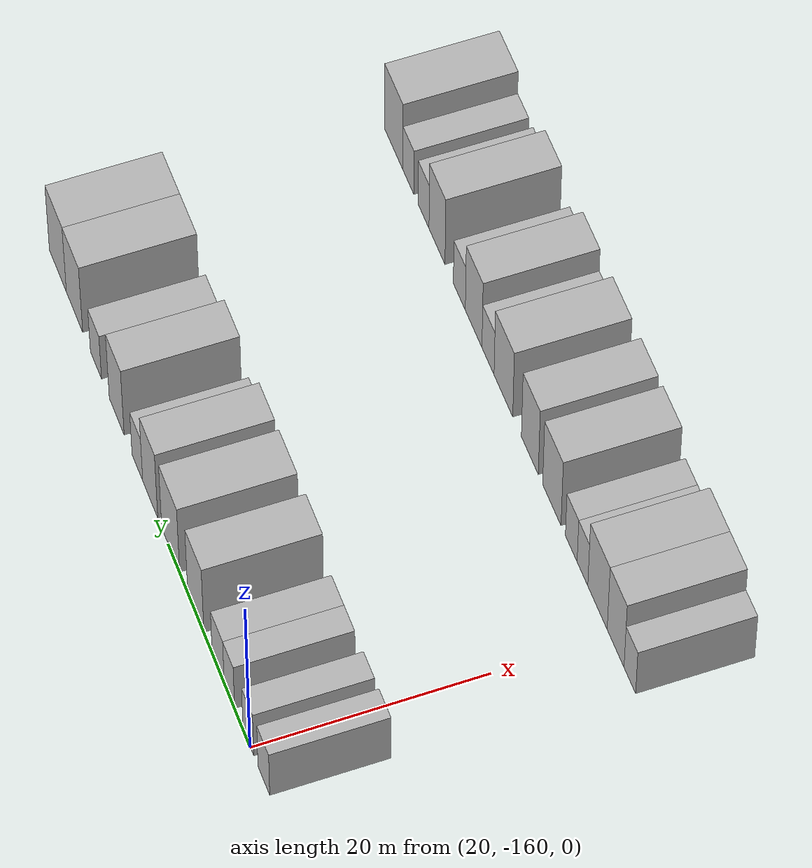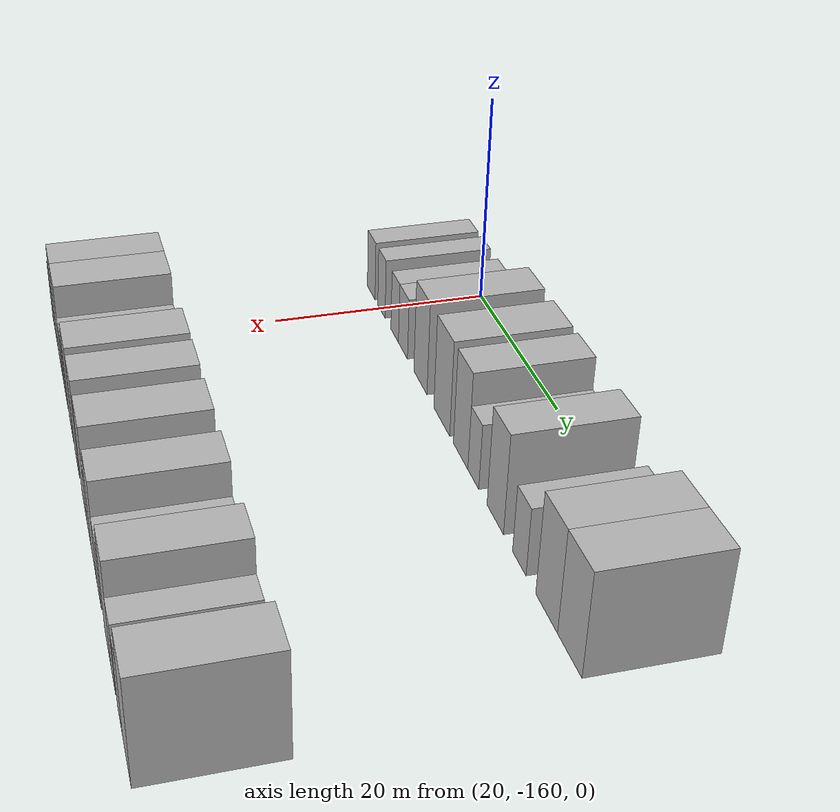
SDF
<sdf version="1.6">
 <world name="default">
  <model name="building_14">
   <static>1</static>
   <pose>25.0000 -163.2379 0 0.000000 0.000000 0.000000</pose>
   <link name="link">
    <pose>0 0 3.00 0 0 0</pose>
    <collision name="collision"><geometry><box><size>10.0000 2.7948 6.0000</size></box></geometry></collision>
    <visual name="visual">
     <cast_shadows>0</cast_shadows>
     <geometry><box><size>10.0000 2.7948 6.0000</size></box></geometry>
     <material>
      <script>
       <uri>model://HANNAS_wall/materials/scripts</uri>
       <uri>model://HANNAS_wall/materials/textures</uri>
       <name>vrc/HANNAS_wall</name>
      </script>
     </material>
    </visual>
   </link>
  </model>
  <model name="building_15">
   <static>1</static>
   <pose>25.0000 -159.5439 0 0.000000 0.000000 0.000000</pose>
   <link name="link">
    <pose>0 0 3.00 0 0 0</pose>
    <collision name="collision"><geometry><box><size>10.0000 2.5931 6.0000</size></box></geometry></collision>
    <visual name="visual">
     <cast_shadows>0</cast_shadows>
     <geometry><box><size>10.0000 2.5931 6.0000</size></box></geometry>
     <material>
      <script>
       <uri>model://HANNAS_wall/materials/scripts</uri>
       <uri>model://HANNAS_wall/materials/textures</uri>
       <name>vrc/HANNAS_wall</name>
      </script>
     </material>
    </visual>
   </link>
  </model>
  <model name="building_16">
   <static>1</static>
   <pose>25.0000 -154.9799 0 0.000000 0.000000 0.000000</pose>
   <link name="link">
    <pose>0 0 3.00 0 0 0</pose>
    <collision name="collision"><geometry><box><size>10.0000 2.5349 6.0000</size></box></geometry></collision>
    <visual name="visual">
     <cast_shadows>0</cast_shadows>
     <geometry><box><size>10.0000 2.5349 6.0000</size></box></geometry>
     <material>
      <script>
       <uri>model://HANNAS_wall/materials/scripts</uri>
       <uri>model://HANNAS_wall/materials/textures</uri>
       <name>vrc/HANNAS_wall</name>
      </script>
     </material>
    </visual>
   </link>
  </model>
  <model name="building_17">
   <static>1</static>
   <pose>25.0000 -152.2463 0 0.000000 0.000000 0.000000</pose>
   <link name="link">
    <pose>0 0 3.00 0 0 0</pose>
    <collision name="collision"><geometry><box><size>10.0000 2.9323 6.0000</size></box></geometry></collision>
    <visual name="visual">
     <cast_shadows>0</cast_shadows>
     <geometry><box><size>10.0000 2.9323 6.0000</size></box></geometry>
     <material>
      <script>
       <uri>model://HANNAS_wall/materials/scripts</uri>
       <uri>model://HANNAS_wall/materials/textures</uri>
       <name>vrc/HANNAS_wall</name>
      </script>
     </material>
    </visual>
   </link>
  </model>
  <model name="building_18">
   <static>1</static>
   <pose>25.0000 -146.7901 0 0.000000 0.000000 0.000000</pose>
   <link name="link">
    <pose>0 0 4.50 0 0 0</pose>
    <collision name="collision"><geometry><box><size>10.0000 3.9801 9.0000</size></box></geometry></collision>
    <visual name="visual">
     <cast_shadows>0</cast_shadows>
     <geometry><box><size>10.0000 3.9801 9.0000</size></box></geometry>
     <material>
      <script>
       <uri>model://HANNAS_wall/materials/scripts</uri>
       <uri>model://HANNAS_wall/materials/textures</uri>
       <name>vrc/HANNAS_wall</name>
      </script>
     </material>
    </visual>
   </link>
  </model>
  <model name="building_19">
   <static>1</static>
   <pose>25.0000 -140.5800 0 0.000000 0.000000 0.000000</pose>
   <link name="link">
    <pose>0 0 4.50 0 0 0</pose>
    <collision name="collision"><geometry><box><size>10.0000 4.4402 9.0000</size></box></geometry></collision>
    <visual name="visual">
     <cast_shadows>0</cast_shadows>
     <geometry><box><size>10.0000 4.4402 9.0000</size></box></geometry>
     <material>
      <script>
       <uri>model://HANNAS_wall/materials/scripts</uri>
       <uri>model://HANNAS_wall/materials/textures</uri>
       <name>vrc/HANNAS_wall</name>
      </script>
     </material>
    </visual>
   </link>
  </model>
  <model name="building_20">
   <static>1</static>
   <pose>25.0000 -135.4775 0 0.000000 0.000000 0.000000</pose>
   <link name="link">
    <pose>0 0 4.50 0 0 0</pose>
    <collision name="collision"><geometry><box><size>10.0000 3.7648 9.0000</size></box></geometry></collision>
    <visual name="visual">
     <cast_shadows>0</cast_shadows>
     <geometry><box><size>10.0000 3.7648 9.0000</size></box></geometry>
     <material>
      <script>
       <uri>model://HANNAS_wall/materials/scripts</uri>
       <uri>model://HANNAS_wall/materials/textures</uri>
       <name>vrc/HANNAS_wall</name>
      </script>
     </material>
    </visual>
   </link>
  </model>
  <model name="building_21">
   <static>1</static>
   <pose>25.0000 -132.2406 0 0.000000 0.000000 0.000000</pose>
   <link name="link">
    <pose>0 0 3.00 0 0 0</pose>
    <collision name="collision"><geometry><box><size>10.0000 2.7090 6.0000</size></box></geometry></collision>
    <visual name="visual">
     <cast_shadows>0</cast_shadows>
     <geometry><box><size>10.0000 2.7090 6.0000</size></box></geometry>
     <material>
      <script>
       <uri>model://HANNAS_wall/materials/scripts</uri>
       <uri>model://HANNAS_wall/materials/textures</uri>
       <name>vrc/HANNAS_wall</name>
      </script>
     </material>
    </visual>
   </link>
  </model>
  <model name="building_22">
   <static>1</static>
   <pose>25.0000 -126.9891 0 0.000000 0.000000 0.000000</pose>
   <link name="link">
    <pose>0 0 4.50 0 0 0</pose>
    <collision name="collision"><geometry><box><size>10.0000 3.7940 9.0000</size></box></geometry></collision>
    <visual name="visual">
     <cast_shadows>0</cast_shadows>
     <geometry><box><size>10.0000 3.7940 9.0000</size></box></geometry>
     <material>
      <script>
       <uri>model://HANNAS_wall/materials/scripts</uri>
       <uri>model://HANNAS_wall/materials/textures</uri>
       <name>vrc/HANNAS_wall</name>
      </script>
     </material>
    </visual>
   </link>
  </model>
  <model name="building_23">
   <static>1</static>
   <pose>25.0000 -121.6589 0 0.000000 0.000000 0.000000</pose>
   <link name="link">
    <pose>0 0 3.00 0 0 0</pose>
    <collision name="collision"><geometry><box><size>10.0000 2.8664 6.0000</size></box></geometry></collision>
    <visual name="visual">
     <cast_shadows>0</cast_shadows>
     <geometry><box><size>10.0000 2.8664 6.0000</size></box></geometry>
     <material>
      <script>
       <uri>model://HANNAS_wall/materials/scripts</uri>
       <uri>model://HANNAS_wall/materials/textures</uri>
       <name>vrc/HANNAS_wall</name>
      </script>
     </material>
    </visual>
   </link>
  </model>
  <model name="building_24">
   <static>1</static>
   <pose>25.0000 -116.0984 0 0.000000 0.000000 0.000000</pose>
   <link name="link">
    <pose>0 0 4.50 0 0 0</pose>
    <collision name="collision"><geometry><box><size>10.0000 4.2546 9.0000</size></box></geometry></collision>
    <visual name="visual">
     <cast_shadows>0</cast_shadows>
     <geometry><box><size>10.0000 4.2546 9.0000</size></box></geometry>
     <material>
      <script>
       <uri>model://HANNAS_wall/materials/scripts</uri>
       <uri>model://HANNAS_wall/materials/textures</uri>
       <name>vrc/HANNAS_wall</name>
      </script>
     </material>
    </visual>
   </link>
  </model>
  <model name="building_25">
   <static>1</static>
   <pose>25.0000 -111.7449 0 0.000000 0.000000 0.000000</pose>
   <link name="link">
    <pose>0 0 4.50 0 0 0</pose>
    <collision name="collision"><geometry><box><size>10.0000 4.4524 9.0000</size></box></geometry></collision>
    <visual name="visual">
     <cast_shadows>0</cast_shadows>
     <geometry><box><size>10.0000 4.4524 9.0000</size></box></geometry>
     <material>
      <script>
       <uri>model://HANNAS_wall/materials/scripts</uri>
       <uri>model://HANNAS_wall/materials/textures</uri>
       <name>vrc/HANNAS_wall</name>
      </script>
     </material>
    </visual>
   </link>
  </model>
  <model name="building_124">
   <static>1</static>
   <pose>55.0000 -164.2656 0 0.000000 0.000000 0.000000</pose>
   <link name="link">
    <pose>0 0 3.00 0 0 0</pose>
    <collision name="collision"><geometry><box><size>10.0000 2.5586 6.0000</size></box></geometry></collision>
    <visual name="visual">
     <cast_shadows>0</cast_shadows>
     <geometry><box><size>10.0000 2.5586 6.0000</size></box></geometry>
     <material>
      <script>
       <uri>model://HANNAS_wall/materials/scripts</uri>
       <uri>model://HANNAS_wall/materials/textures</uri>
       <name>vrc/HANNAS_wall</name>
      </script>
     </material>
    </visual>
   </link>
  </model>
  <model name="building_125">
   <static>1</static>
   <pose>55.0000 -161.1176 0 0.000000 0.000000 0.000000</pose>
   <link name="link">
    <pose>0 0 4.50 0 0 0</pose>
    <collision name="collision"><geometry><box><size>10.0000 3.7374 9.0000</size></box></geometry></collision>
    <visual name="visual">
     <cast_shadows>0</cast_shadows>
     <geometry><box><size>10.0000 3.7374 9.0000</size></box></geometry>
     <material>
      <script>
       <uri>model://HANNAS_wall/materials/scripts</uri>
       <uri>model://HANNAS_wall/materials/textures</uri>
       <name>vrc/HANNAS_wall</name>
      </script>
     </material>
    </visual>
   </link>
  </model>
  <model name="building_126">
   <static>1</static>
   <pose>55.0000 -157.0843 0 0.000000 0.000000 0.000000</pose>
   <link name="link">
    <pose>0 0 4.50 0 0 0</pose>
    <collision name="collision"><geometry><box><size>10.0000 4.3291 9.0000</size></box></geometry></collision>
    <visual name="visual">
     <cast_shadows>0</cast_shadows>
     <geometry><box><size>10.0000 4.3291 9.0000</size></box></geometry>
     <material>
      <script>
       <uri>model://HANNAS_wall/materials/scripts</uri>
       <uri>model://HANNAS_wall/materials/textures</uri>
       <name>vrc/HANNAS_wall</name>
      </script>
     </material>
    </visual>
   </link>
  </model>
  <model name="building_127">
   <static>1</static>
   <pose>55.0000 -153.7164 0 0.000000 0.000000 0.000000</pose>
   <link name="link">
    <pose>0 0 3.00 0 0 0</pose>
    <collision name="collision"><geometry><box><size>10.0000 2.4066 6.0000</size></box></geometry></collision>
    <visual name="visual">
     <cast_shadows>0</cast_shadows>
     <geometry><box><size>10.0000 2.4066 6.0000</size></box></geometry>
     <material>
      <script>
       <uri>model://HANNAS_wall/materials/scripts</uri>
       <uri>model://HANNAS_wall/materials/textures</uri>
       <name>vrc/HANNAS_wall</name>
      </script>
     </material>
    </visual>
   </link>
  </model>
  <model name="building_128">
   <static>1</static>
   <pose>55.0000 -151.1873 0 0.000000 0.000000 0.000000</pose>
   <link name="link">
    <pose>0 0 3.00 0 0 0</pose>
    <collision name="collision"><geometry><box><size>10.0000 2.6517 6.0000</size></box></geometry></collision>
    <visual name="visual">
     <cast_shadows>0</cast_shadows>
     <geometry><box><size>10.0000 2.6517 6.0000</size></box></geometry>
     <material>
      <script>
       <uri>model://HANNAS_wall/materials/scripts</uri>
       <uri>model://HANNAS_wall/materials/textures</uri>
       <name>vrc/HANNAS_wall</name>
      </script>
     </material>
    </visual>
   </link>
  </model>
  <model name="building_129">
   <static>1</static>
   <pose>55.0000 -146.7681 0 0.000000 0.000000 0.000000</pose>
   <link name="link">
    <pose>0 0 4.50 0 0 0</pose>
    <collision name="collision"><geometry><box><size>10.0000 4.1867 9.0000</size></box></geometry></collision>
    <visual name="visual">
     <cast_shadows>0</cast_shadows>
     <geometry><box><size>10.0000 4.1867 9.0000</size></box></geometry>
     <material>
      <script>
       <uri>model://HANNAS_wall/materials/scripts</uri>
       <uri>model://HANNAS_wall/materials/textures</uri>
       <name>vrc/HANNAS_wall</name>
      </script>
     </material>
    </visual>
   </link>
  </model>
  <model name="building_130">
   <static>1</static>
   <pose>55.0000 -141.7245 0 0.000000 0.000000 0.000000</pose>
   <link name="link">
    <pose>0 0 4.50 0 0 0</pose>
    <collision name="collision"><geometry><box><size>10.0000 3.9005 9.0000</size></box></geometry></collision>
    <visual name="visual">
     <cast_shadows>0</cast_shadows>
     <geometry><box><size>10.0000 3.9005 9.0000</size></box></geometry>
     <material>
      <script>
       <uri>model://HANNAS_wall/materials/scripts</uri>
       <uri>model://HANNAS_wall/materials/textures</uri>
       <name>vrc/HANNAS_wall</name>
      </script>
     </material>
    </visual>
   </link>
  </model>
  <model name="building_131">
   <static>1</static>
   <pose>55.0000 -135.5959 0 0.000000 0.000000 0.000000</pose>
   <link name="link">
    <pose>0 0 4.50 0 0 0</pose>
    <collision name="collision"><geometry><box><size>10.0000 4.3566 9.0000</size></box></geometry></collision>
    <visual name="visual">
     <cast_shadows>0</cast_shadows>
     <geometry><box><size>10.0000 4.3566 9.0000</size></box></geometry>
     <material>
      <script>
       <uri>model://HANNAS_wall/materials/scripts</uri>
       <uri>model://HANNAS_wall/materials/textures</uri>
       <name>vrc/HANNAS_wall</name>
      </script>
     </material>
    </visual>
   </link>
  </model>
  <model name="building_132">
   <static>1</static>
   <pose>55.0000 -131.9917 0 0.000000 0.000000 0.000000</pose>
   <link name="link">
    <pose>0 0 3.00 0 0 0</pose>
    <collision name="collision"><geometry><box><size>10.0000 2.8517 6.0000</size></box></geometry></collision>
    <visual name="visual">
     <cast_shadows>0</cast_shadows>
     <geometry><box><size>10.0000 2.8517 6.0000</size></box></geometry>
     <material>
      <script>
       <uri>model://HANNAS_wall/materials/scripts</uri>
       <uri>model://HANNAS_wall/materials/textures</uri>
       <name>vrc/HANNAS_wall</name>
      </script>
     </material>
    </visual>
   </link>
  </model>
  <model name="building_133">
   <static>1</static>
   <pose>55.0000 -128.6016 0 0.000000 0.000000 0.000000</pose>
   <link name="link">
    <pose>0 0 4.50 0 0 0</pose>
    <collision name="collision"><geometry><box><size>10.0000 3.9286 9.0000</size></box></geometry></collision>
    <visual name="visual">
     <cast_shadows>0</cast_shadows>
     <geometry><box><size>10.0000 3.9286 9.0000</size></box></geometry>
     <material>
      <script>
       <uri>model://HANNAS_wall/materials/scripts</uri>
       <uri>model://HANNAS_wall/materials/textures</uri>
       <name>vrc/HANNAS_wall</name>
      </script>
     </material>
    </visual>
   </link>
  </model>
  <model name="building_134">
   <static>1</static>
   <pose>55.0000 -125.2140 0 0.000000 0.000000 0.000000</pose>
   <link name="link">
    <pose>0 0 3.00 0 0 0</pose>
    <collision name="collision"><geometry><box><size>10.0000 2.8466 6.0000</size></box></geometry></collision>
    <visual name="visual">
     <cast_shadows>0</cast_shadows>
     <geometry><box><size>10.0000 2.8466 6.0000</size></box></geometry>
     <material>
      <script>
       <uri>model://HANNAS_wall/materials/scripts</uri>
       <uri>model://HANNAS_wall/materials/textures</uri>
       <name>vrc/HANNAS_wall</name>
      </script>
     </material>
    </visual>
   </link>
  </model>
  <model name="building_135">
   <static>1</static>
   <pose>55.0000 -119.8670 0 0.000000 0.000000 0.000000</pose>
   <link name="link">
    <pose>0 0 4.50 0 0 0</pose>
    <collision name="collision"><geometry><box><size>10.0000 3.8474 9.0000</size></box></geometry></collision>
    <visual name="visual">
     <cast_shadows>0</cast_shadows>
     <geometry><box><size>10.0000 3.8474 9.0000</size></box></geometry>
     <material>
      <script>
       <uri>model://HANNAS_wall/materials/scripts</uri>
       <uri>model://HANNAS_wall/materials/textures</uri>
       <name>vrc/HANNAS_wall</name>
      </script>
     </material>
    </visual>
   </link>
  </model>
  <model name="building_136">
   <static>1</static>
   <pose>55.0000 -116.6100 0 0.000000 0.000000 0.000000</pose>
   <link name="link">
    <pose>0 0 3.00 0 0 0</pose>
    <collision name="collision"><geometry><box><size>10.0000 2.6668 6.0000</size></box></geometry></collision>
    <visual name="visual">
     <cast_shadows>0</cast_shadows>
     <geometry><box><size>10.0000 2.6668 6.0000</size></box></geometry>
     <material>
      <script>
       <uri>model://HANNAS_wall/materials/scripts</uri>
       <uri>model://HANNAS_wall/materials/textures</uri>
       <name>vrc/HANNAS_wall</name>
      </script>
     </material>
    </visual>
   </link>
  </model>
  <model name="building_137">
   <static>1</static>
   <pose>55.0000 -112.9470 0 0.000000 0.000000 0.000000</pose>
   <link name="link">
    <pose>0 0 3.00 0 0 0</pose>
    <collision name="collision"><geometry><box><size>10.0000 2.6591 6.0000</size></box></geometry></collision>
    <visual name="visual">
     <cast_shadows>0</cast_shadows>
     <geometry><box><size>10.0000 2.6591 6.0000</size></box></geometry>
     <material>
      <script>
       <uri>model://HANNAS_wall/materials/scripts</uri>
       <uri>model://HANNAS_wall/materials/textures</uri>
       <name>vrc/HANNAS_wall</name>
      </script>
     </material>
    </visual>
   </link>
  </model>
  <model name="building_138">
   <static>1</static>
   <pose>55.0000 -109.3928 0 0.000000 0.000000 0.000000</pose>
   <link name="link">
    <pose>0 0 4.50 0 0 0</pose>
    <collision name="collision"><geometry><box><size>10.0000 4.4492 9.0000</size></box></geometry></collision>
    <visual name="visual">
     <cast_shadows>0</cast_shadows>
     <geometry><box><size>10.0000 4.4492 9.0000</size></box></geometry>
     <material>
      <script>
       <uri>model://HANNAS_wall/materials/scripts</uri>
       <uri>model://HANNAS_wall/materials/textures</uri>
       <name>vrc/HANNAS_wall</name>
      </script>
     </material>
    </visual>
   </link>
  </model>
 </world>
</sdf>
